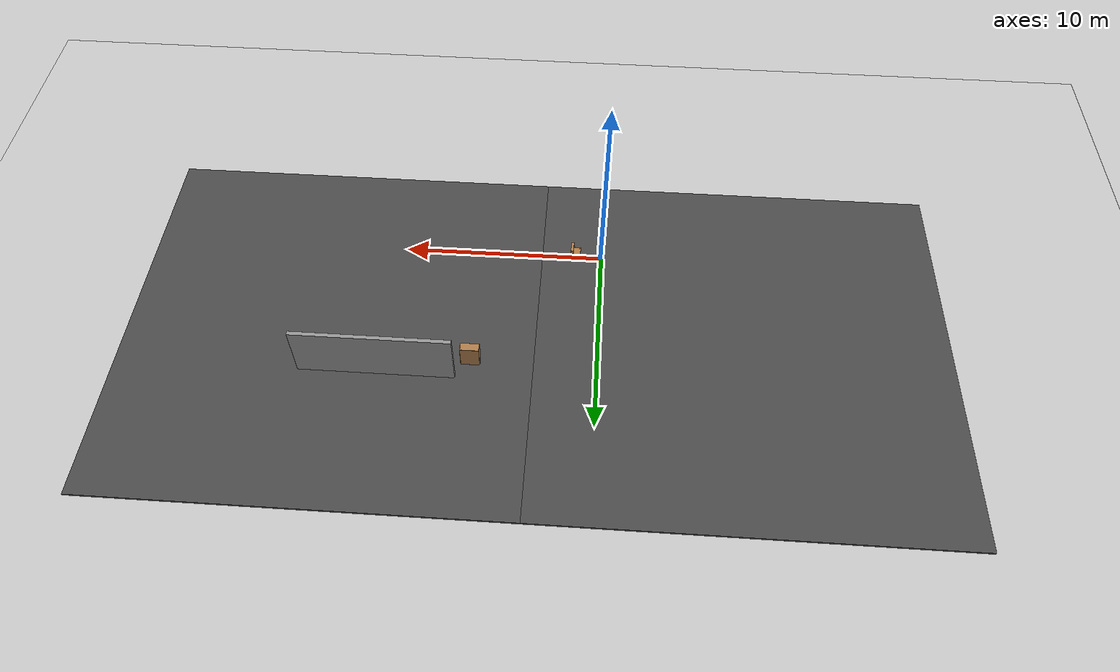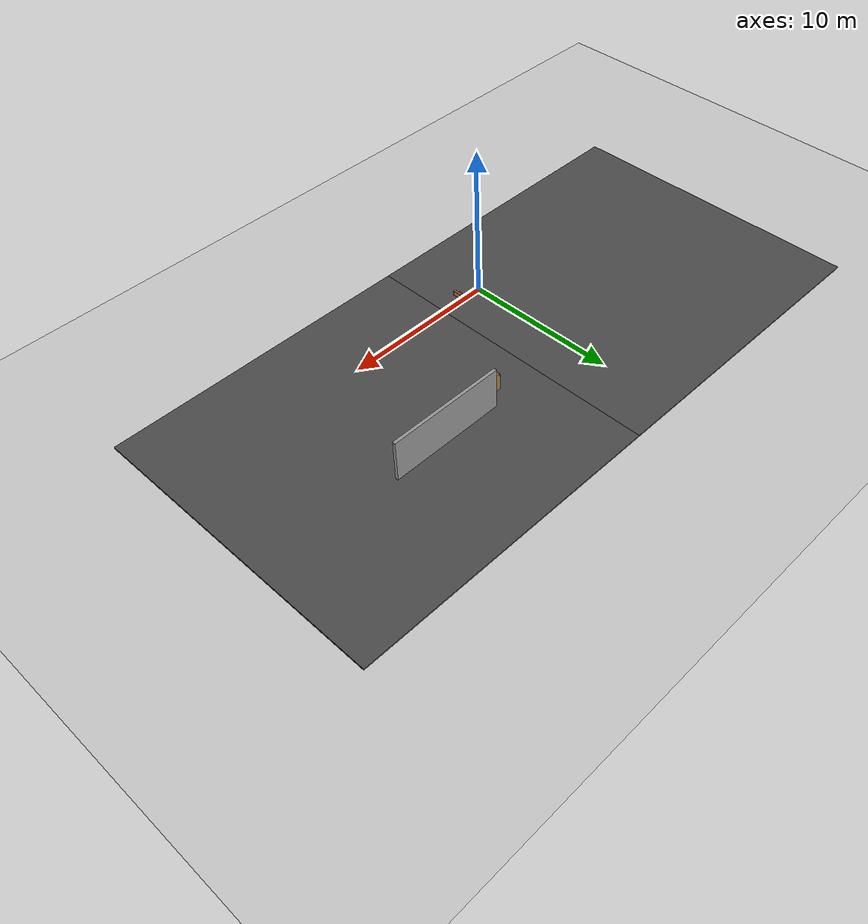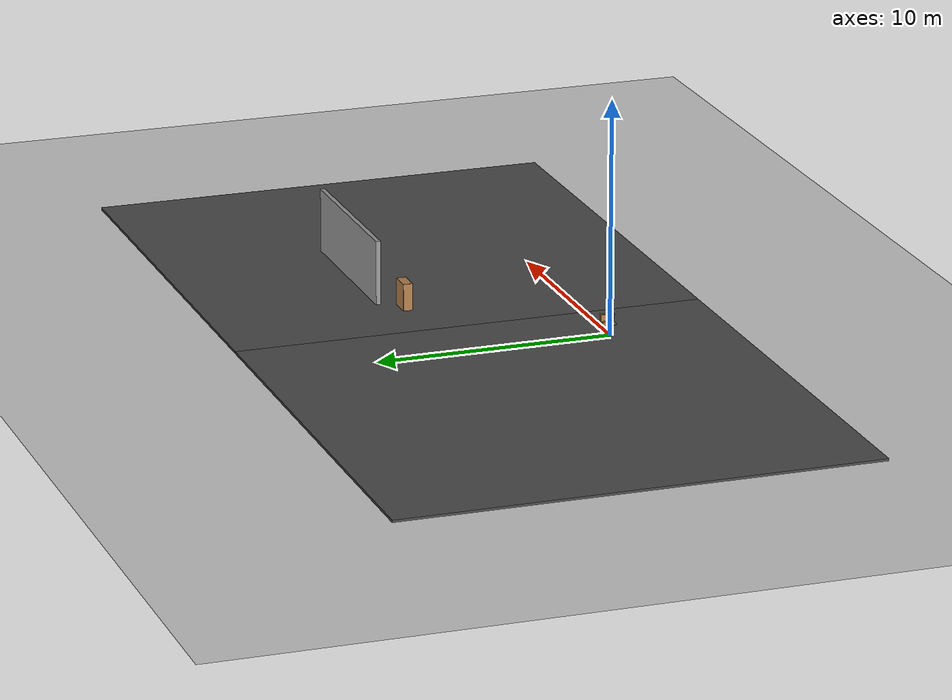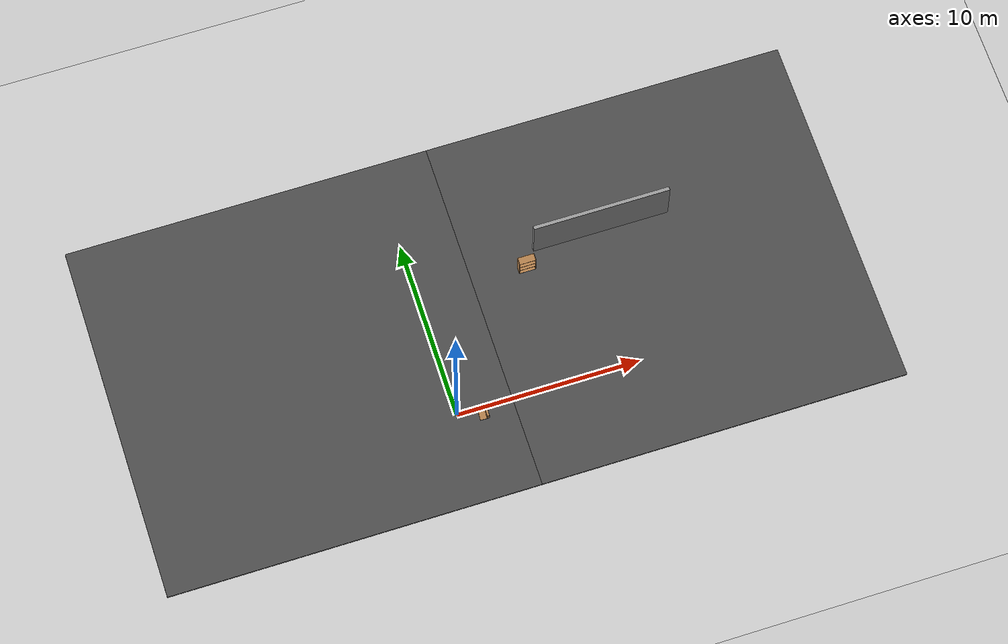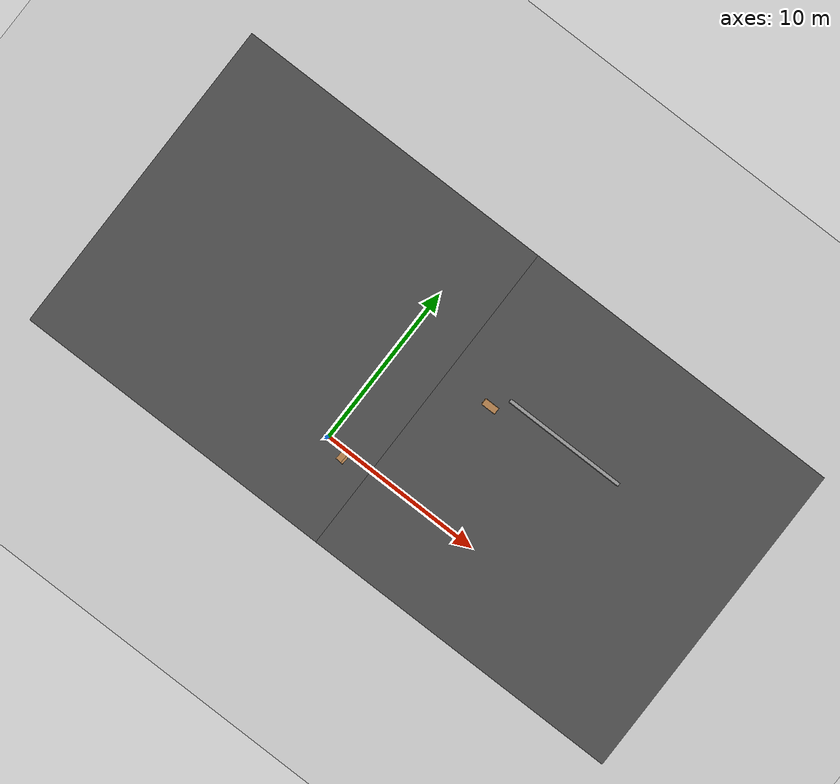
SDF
<sdf version="1.4">
 <world name="default">
  <model name="ground_plane">
   <static>1</static>
   <link name="link">
    <collision name="collision">
     <geometry><plane><normal>0 0 1</normal><size>100 100</size></plane></geometry>
     <surface><friction><ode><mu>100</mu><mu2>50</mu2></ode></friction></surface>
    </collision>
    <visual name="visual">
     <cast_shadows>0</cast_shadows>
     <geometry><plane><normal>0 0 1</normal><size>100 100</size></plane></geometry>
     <material>
      <script><uri>file://media/materials/scripts/gazebo.material</uri><name>Gazebo/Grey</name></script>
     </material>
    </visual>
    <velocity_decay><linear>0</linear><angular>0</angular></velocity_decay>
   </link>
  </model>
  <model name="grey_wall">
   <static>1</static>
   <link name="link">
    <pose>0 0 1.4 0 -0 0</pose>
    <collision name="collision"><geometry><box><size>7.5 0.2 2.8</size></box></geometry></collision>
    <visual name="visual">
     <cast_shadows>0</cast_shadows>
     <geometry><box><size>7.5 0.2 2.8</size></box></geometry>
     <material>
      <script>
       <uri>model://grey_wall/materials/scripts</uri>
       <uri>model://grey_wall/materials/textures</uri>
       <name>vrc/grey_wall</name>
      </script>
     </material>
    </visual>
    <velocity_decay><linear>0</linear><angular>0</angular></velocity_decay>
   </link>
   <pose>10.402 7.71769 0 0 -0 0</pose>
  </model>
  <model name="asphalt_plane">
   <static>1</static>
   <link name="link">
    <collision name="collision"><geometry><box><size>20 20 0.1</size></box></geometry></collision>
    <visual name="visual">
     <cast_shadows>0</cast_shadows>
     <geometry><box><size>20 20 0.1</size></box></geometry>
     <material>
      <script>
       <uri>model://asphalt_plane/materials/scripts</uri>
       <uri>model://asphalt_plane/materials/textures</uri>
       <name>vrc/asphalt</name>
      </script>
     </material>
    </visual>
    <velocity_decay><linear>0</linear><angular>0</angular></velocity_decay>
   </link>
   <pose>-7 5 0 0 -0 0</pose>
  </model>
  <model name="asphalt_plane_0">
   <static>1</static>
   <link name="link">
    <collision name="collision"><geometry><box><size>20 20 0.1</size></box></geometry></collision>
    <visual name="visual">
     <cast_shadows>0</cast_shadows>
     <geometry><box><size>20 20 0.1</size></box></geometry>
     <material>
      <script>
       <uri>model://asphalt_plane/materials/scripts</uri>
       <uri>model://asphalt_plane/materials/textures</uri>
       <name>vrc/asphalt</name>
      </script>
     </material>
    </visual>
    <velocity_decay><linear>0</linear><angular>0</angular></velocity_decay>
   </link>
   <pose>13 5 0 0 -0 0</pose>
  </model>
  <model name="bookshelf">
   <static>1</static>
   <link name="link">
    <inertial><mass>1</mass></inertial>
    <collision name="back">
     <pose>0 0.005 0.6 0 -0 0</pose>
     <geometry><box><size>0.9 0.01 1.2</size></box></geometry>
    </collision>
    <visual name="visual1">
     <pose>0 0.005 0.6 0 -0 0</pose>
     <geometry><box><size>0.9 0.01 1.2</size></box></geometry>
     <material>
      <script><uri>file://media/materials/scripts/gazebo.material</uri><name>Gazebo/Wood</name></script>
     </material>
    </visual>
    <collision name="left_side">
     <pose>0.45 -0.195 0.6 0 -0 0</pose>
     <geometry><box><size>0.02 0.4 1.2</size></box></geometry>
    </collision>
    <visual name="visual2">
     <pose>0.45 -0.195 0.6 0 -0 0</pose>
     <geometry><box><size>0.02 0.4 1.2</size></box></geometry>
     <material>
      <script><uri>file://media/materials/scripts/gazebo.material</uri><name>Gazebo/Wood</name></script>
     </material>
    </visual>
    <collision name="right_side">
     <pose>-0.45 -0.195 0.6 0 -0 0</pose>
     <geometry><box><size>0.02 0.4 1.2</size></box></geometry>
    </collision>
    <visual name="visual3">
     <pose>-0.45 -0.195 0.6 0 -0 0</pose>
     <geometry><box><size>0.02 0.4 1.2</size></box></geometry>
     <material>
      <script><uri>file://media/materials/scripts/gazebo.material</uri><name>Gazebo/Wood</name></script>
     </material>
    </visual>
    <collision name="bottom">
     <pose>0 -0.195 0.03 0 -0 0</pose>
     <geometry><box><size>0.88 0.4 0.06</size></box></geometry>
    </collision>
    <visual name="visual4">
     <pose>0 -0.195 0.03 0 -0 0</pose>
     <geometry><box><size>0.88 0.4 0.06</size></box></geometry>
     <material>
      <script><uri>file://media/materials/scripts/gazebo.material</uri><name>Gazebo/Wood</name></script>
     </material>
    </visual>
    <collision name="top">
     <pose>0 -0.195 1.19 0 -0 0</pose>
     <geometry><box><size>0.88 0.4 0.02</size></box></geometry>
    </collision>
    <visual name="visual5">
     <pose>0 -0.195 1.19 0 -0 0</pose>
     <geometry><box><size>0.88 0.4 0.02</size></box></geometry>
     <material>
      <script><uri>file://media/materials/scripts/gazebo.material</uri><name>Gazebo/Wood</name></script>
     </material>
    </visual>
    <collision name="low_shelf">
     <pose>0 -0.195 0.43 0 -0 0</pose>
     <geometry><box><size>0.88 0.4 0.02</size></box></geometry>
    </collision>
    <visual name="visual6">
     <pose>0 -0.195 0.43 0 -0 0</pose>
     <geometry><box><size>0.88 0.4 0.02</size></box></geometry>
     <material>
      <script><uri>file://media/materials/scripts/gazebo.material</uri><name>Gazebo/Wood</name></script>
     </material>
    </visual>
    <collision name="high_shelf">
     <pose>0 -0.195 0.8 0 -0 0</pose>
     <geometry><box><size>0.88 0.4 0.02</size></box></geometry>
    </collision>
    <visual name="visual7">
     <pose>0 -0.195 0.8 0 -0 0</pose>
     <geometry><box><size>0.88 0.4 0.02</size></box></geometry>
     <material>
      <script><uri>file://media/materials/scripts/gazebo.material</uri><name>Gazebo/Wood</name></script>
     </material>
    </visual>
    <velocity_decay><linear>0</linear><angular>0</angular></velocity_decay>
   </link>
   <pose>6 7 0 0 -0 0</pose>
  </model>
  <model name="wooden_case_0">
   <link name="base">
    <pose>0 0 0.024 0 -0 0</pose>
    <inertial>
     <pose>-0.0221845 0 0.171592 0 -0 0</pose>
     <mass>3.96264</mass>
     <inertia>
      <ixx>0.213536</ixx>
      <ixy>0</ixy>
      <ixz>0.000779377</ixz>
      <iyy>0.0708943</iyy>
      <iyz>0</iyz>
      <izz>0.154604</izz>
     </inertia>
    </inertial>
    <collision name="collision_back">
     <pose>-0.053975 0 0.1778 0 -0 0</pose>
     <geometry><box><size>0.01905 0.5461 0.3175</size></box></geometry>
     <surface><contact><ode><max_vel>0.1</max_vel><min_depth>0.001</min_depth></ode></contact></surface>
    </collision>
    <visual name="visual_back">
     <pose>-0.053975 0 0.1778 0 -0 0</pose>
     <geometry><box><size>0.01905 0.5461 0.3175</size></box></geometry>
     <material>
      <script><uri>file://media/materials/scripts/gazebo.material</uri><name>Gazebo/Wood</name></script>
     </material>
    </visual>
    <collision name="collision_bottom">
     <pose>0 0 0.009525 0 -0 0</pose>
     <geometry><box><size>0.127 0.5842 0.01905</size></box></geometry>
     <surface><contact><ode><max_vel>0.1</max_vel><min_depth>0.001</min_depth></ode></contact></surface>
    </collision>
    <visual name="visual_bottom">
     <pose>0 0 0.009525 0 -0 0</pose>
     <geometry><box><size>0.127 0.5842 0.01905</size></box></geometry>
     <material>
      <script><uri>file://media/materials/scripts/gazebo.material</uri><name>Gazebo/Wood</name></script>
     </material>
    </visual>
    <collision name="collision_top">
     <pose>0 0 0.346075 0 -0 0</pose>
     <geometry><box><size>0.127 0.5842 0.01905</size></box></geometry>
     <surface><contact><ode><max_vel>0.1</max_vel><min_depth>0.001</min_depth></ode></contact></surface>
    </collision>
    <visual name="visual_top">
     <pose>0 0 0.346075 0 -0 0</pose>
     <geometry><box><size>0.127 0.5842 0.01905</size></box></geometry>
     <material>
      <script><uri>file://media/materials/scripts/gazebo.material</uri><name>Gazebo/Wood</name></script>
     </material>
    </visual>
    <collision name="collision_left">
     <pose>0 -0.282575 0.1778 0 -0 0</pose>
     <geometry><box><size>0.127 0.01905 0.3175</size></box></geometry>
     <surface><contact><ode><max_vel>0.1</max_vel><min_depth>0.001</min_depth></ode></contact></surface>
    </collision>
    <visual name="visual_left">
     <pose>0 -0.282575 0.1778 0 -0 0</pose>
     <geometry><box><size>0.127 0.01905 0.3175</size></box></geometry>
     <material>
      <script><uri>file://media/materials/scripts/gazebo.material</uri><name>Gazebo/Wood</name></script>
     </material>
    </visual>
    <collision name="collision_right">
     <pose>0 0.282575 0.1778 0 -0 0</pose>
     <geometry><box><size>0.127 0.01905 0.3175</size></box></geometry>
     <surface><contact><ode><max_vel>0.1</max_vel><min_depth>0.001</min_depth></ode></contact></surface>
    </collision>
    <visual name="visual_right">
     <pose>0 0.282575 0.1778 0 -0 0</pose>
     <geometry><box><size>0.127 0.01905 0.3175</size></box></geometry>
     <material>
      <script><uri>file://media/materials/scripts/gazebo.material</uri><name>Gazebo/Wood</name></script>
     </material>
    </visual>
    <collision name="collision_block_left">
     <pose>0.0095 -0.2151 -0.012 0 -0 0</pose>
     <geometry><box><size>0.108 0.05 0.024</size></box></geometry>
     <surface><contact><ode><max_vel>0.1</max_vel><min_depth>0.001</min_depth></ode></contact></surface>
    </collision>
    <visual name="visual_block_left">
     <pose>0.0095 -0.2151 -0.012 0 -0 0</pose>
     <geometry><box><size>0.108 0.05 0.024</size></box></geometry>
     <material>
      <script><uri>file://media/materials/scripts/gazebo.material</uri><name>Gazebo/Wood</name></script>
     </material>
    </visual>
    <collision name="collision_block_right">
     <pose>0.0095 0.2151 -0.012 0 -0 0</pose>
     <geometry><box><size>0.108 0.05 0.024</size></box></geometry>
     <surface><contact><ode><max_vel>0.1</max_vel><min_depth>0.001</min_depth></ode></contact></surface>
    </collision>
    <visual name="visual_block_right">
     <pose>0.0095 0.2151 -0.012 0 -0 0</pose>
     <geometry><box><size>0.108 0.05 0.024</size></box></geometry>
     <material>
      <script><uri>file://media/materials/scripts/gazebo.material</uri><name>Gazebo/Wood</name></script>
     </material>
    </visual>
    <velocity_decay><linear>0</linear><angular>0</angular></velocity_decay>
   </link>
   <link name="lid">
    <pose>0.243775 0 0.009525 0 -0 0</pose>
    <inertial>
     <mass>1.97874</mass>
     <inertia>
      <ixx>0.0563367</ixx>
      <ixy>0</ixy>
      <ixz>0</ixz>
      <iyy>0.020911</iyy>
      <iyz>0</iyz>
      <izz>0.0771281</izz>
     </inertia>
    </inertial>
    <collision name="collision">
     <geometry><box><size>0.3556 0.5842 0.01905</size></box></geometry>
     <surface><contact><ode><max_vel>0.1</max_vel><min_depth>0.001</min_depth></ode></contact></surface>
    </collision>
    <visual name="visual">
     <geometry><box><size>0.3556 0.5842 0.01905</size></box></geometry>
     <material>
      <script><uri>file://media/materials/scripts/gazebo.material</uri><name>Gazebo/Wood</name></script>
     </material>
    </visual>
    <visual name="tee_nut_1">
     <pose>0.122 -0.216 0 0 -0 0</pose>
     <geometry><cylinder><radius>0.00635</radius><length>0.0192405</length></cylinder></geometry>
     <material>
      <script><uri>file://media/materials/scripts/gazebo.material</uri><name>Gazebo/Grey</name></script>
     </material>
    </visual>
    <visual name="tee_nut_2">
     <pose>0.122 -0.088 0 0 -0 0</pose>
     <geometry><cylinder><radius>0.00635</radius><length>0.0192405</length></cylinder></geometry>
     <material>
      <script><uri>file://media/materials/scripts/gazebo.material</uri><name>Gazebo/Grey</name></script>
     </material>
    </visual>
    <visual name="tee_nut_3">
     <pose>0.122 0.088 0 0 -0 0</pose>
     <geometry><cylinder><radius>0.00635</radius><length>0.0192405</length></cylinder></geometry>
     <material>
      <script><uri>file://media/materials/scripts/gazebo.material</uri><name>Gazebo/Grey</name></script>
     </material>
    </visual>
    <visual name="tee_nut_4">
     <pose>0.122 0.216 0 0 -0 0</pose>
     <geometry><cylinder><radius>0.00635</radius><length>0.0192405</length></cylinder></geometry>
     <material>
      <script><uri>file://media/materials/scripts/gazebo.material</uri><name>Gazebo/Grey</name></script>
     </material>
    </visual>
    <velocity_decay><linear>0</linear><angular>0</angular></velocity_decay>
   </link>
   <joint name="lid_hinge" type="revolute">
    <pose>-0.1778 0 0.01905 0 -0 0</pose>
    <parent>base</parent>
    <child>lid</child>
    <axis><xyz>0 1 0</xyz><limit><upper>0.523599</upper><lower>-1.5708</lower></limit></axis>
   </joint>
   <pose>1.48259 -0.407979 0.049606 -0.000465 0.000127 3.09072</pose>
   <static>0</static>
  </model>
 </world>
</sdf>
